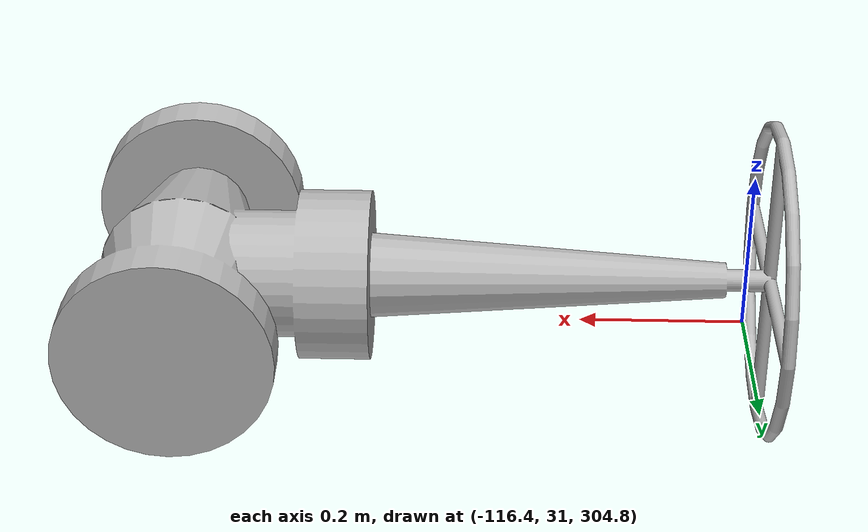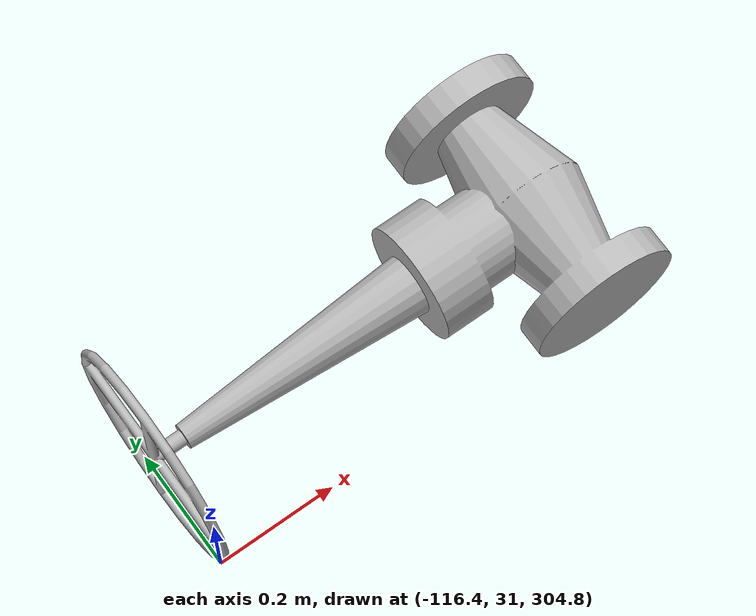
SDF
<?xml version='1.0'?>
<sdf version='1.7'>
    <model name='20-2007VF'>
        <static>true</static>
        <link name='link0'>
            <visual name="visual0">
                <pose>0 0 0 0 0 0</pose>
                <geometry>
                    <mesh>
                        <uri>model://huldra-models/20-2007VF/meshes/20-2007VF.obj</uri>
                    </mesh>
                </geometry>
            </visual>
        </link>
    </model>
</sdf>
